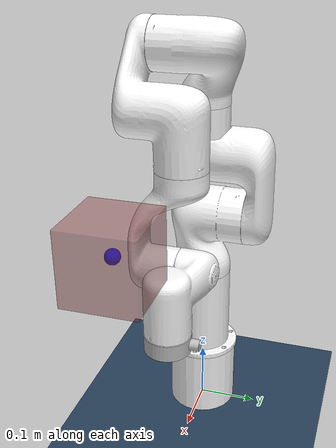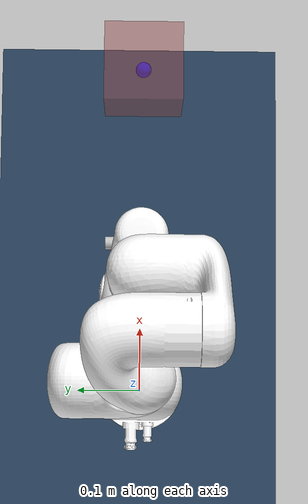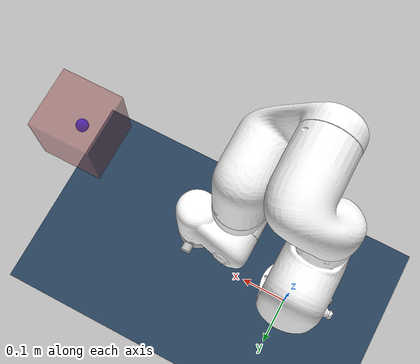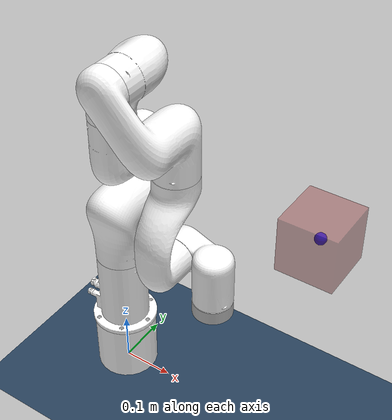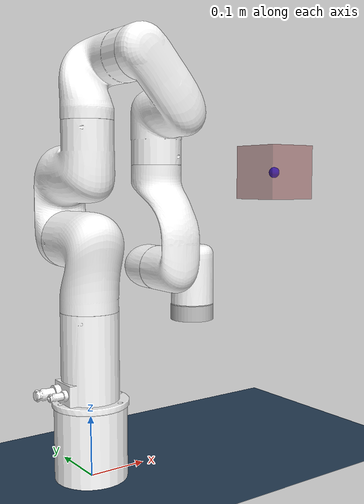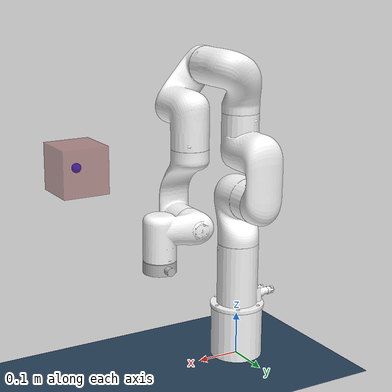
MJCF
<mujoco model="xarm7 scene">
  <include file="xarm7_nohand.xml"/>

  <statistic center="0.2 0 0.4" extent=".65"/>

  <visual>
    <headlight diffuse="0.6 0.6 0.6" ambient="0.3 0.3 0.3" specular="0 0 0"/>
    <rgba haze="0.15 0.25 0.35 1"/>
    <global azimuth="150" elevation="-20"/>
  </visual>

  <asset>
    <texture type="skybox" builtin="gradient" rgb1="0.3 0.5 0.7" rgb2="0 0 0" width="512" height="3072"/>
    <texture type="2d" name="groundplane" builtin="checker" mark="edge" rgb1="0.2 0.3 0.4" rgb2="0.1 0.2 0.3"
      markrgb="0.8 0.8 0.8" width="300" height="300"/>
    <material name="groundplane" texture="groundplane" texuniform="true" texrepeat="5 5" reflectance="0.2"/>
  </asset>

  <worldbody>
    <light pos="0 0 1.5" dir="0 0 -1" directional="true"/>
    <geom name="floor" size="0 0 0.05" type="plane" material="groundplane"/>
    <geom type="cylinder" size=".06 .06" pos="0 0 .06" rgba="1 1 1 1"/>
    <body name="test_mocap_marker" pos="0.4 0 0.5" quat="0 1 0 0" mocap="true">
      <geom type="box" size=".05 .05 .05" contype="0" conaffinity="0" rgba=".6 .3 .3 .5"/>
      <site type="sphere" size="0.01" rgba="0 0 1 1" group="1"/>
    </body>
  </worldbody>
</mujoco>

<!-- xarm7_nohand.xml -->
<mujoco model="xarm7 nohand">
  <compiler angle="radian" autolimits="true" meshdir="assets"/>

  <option integrator="implicitfast"/>

  <!-- ! moved to main file to satisfy reference mechanics -->

  <asset>
    <material name="white" rgba="1 1 1 1"/>
    <material name="gray" rgba="0.753 0.753 0.753 1"/>

    <mesh file="link_base.stl"/>
    <mesh file="link1.stl"/>
    <mesh file="link2.stl"/>
    <mesh file="link3.stl"/>
    <mesh file="link4.stl"/>
    <mesh file="link5.stl"/>
    <mesh file="link6.stl"/>
    <mesh file="link7.stl"/>
    <mesh file="end_tool.stl"/>
  </asset>

  <!--? =================================================================================LINKS and JOINTS============================================================================== -->

  <!-- ! moved to main file to satisfy reference mechanics -->
  <default>
    <default class="xarm7">
      <geom type="mesh" material="white"/>
      <joint axis="0 0 1" armature="0.1" range="-6.28319 6.28319" frictionloss="1"/>
      <general biastype="affine" ctrlrange="-6.28319 6.28319"/>
      <default class="size1">
        <joint damping="10"/>
        <general gainprm="1500" biasprm="0 -1500 -150" forcerange="-50 50"/>
      </default>
      <default class="size2">
        <joint damping="5"/>
        <general gainprm="1000" biasprm="0 -1000 -100" forcerange="-30 30"/>
      </default>
      <default class="size3">
        <joint damping="2"/>
        <general gainprm="800" biasprm="0 -800 -80" forcerange="-20 20"/>
      </default>
      <site size="0.001" rgba="1 0 0 1" group="4"/>
    </default>
  </default>

  <worldbody>
    <body name="link_base" pos="0 0 .12" childclass="xarm7">
      <inertial pos="-0.021131 -0.0016302 0.056488" quat="0.696843 0.20176 0.10388 0.680376" mass="0.88556"
        diaginertia="0.00382023 0.00335282 0.00167725"/>
      <geom mesh="link_base"/>
      <body name="link1" pos="0 0 0.267">
        <inertial pos="-0.0002 0.02905 -0.01233" quat="0.978953 -0.202769 -0.00441617 -0.0227264" mass="2.382"
          diaginertia="0.00569127 0.00533384 0.00293865"/>
        <joint name="joint1" class="size1"/>
        <geom mesh="link1"/>
        <body name="link2" quat="1 -1 0 0">
          <inertial pos="0.00022 -0.12856 0.01735" quat="0.50198 0.86483 -0.00778841 0.00483285" mass="1.869"
            diaginertia="0.00959898 0.00937717 0.00201315"/>
          <joint name="joint2" range="-2.059 2.0944" class="size1"/>
          <geom mesh="link2"/>
          <body name="link3" pos="0 -0.293 0" quat="1 1 0 0">
            <inertial pos="0.0466 -0.02463 -0.00768" quat="0.913819 0.289775 0.281481 -0.0416455" mass="1.6383"
              diaginertia="0.00351721 0.00294089 0.00195868"/>
            <joint name="joint3" class="size2"/>
            <geom mesh="link3"/>
            <body name="link4" pos="0.0525 0 0" quat="1 1 0 0">
              <inertial pos="0.07047 -0.11575 0.012" quat="0.422108 0.852026 -0.126025 0.282832" mass="1.7269"
                diaginertia="0.00657137 0.00647948 0.00186763"/>
              <joint name="joint4" range="-0.19198 3.927" class="size2"/>
              <geom mesh="link4"/>
              <body name="link5" pos="0.0775 -0.3425 0" quat="1 1 0 0">
                <inertial pos="-0.00032 0.01604 -0.026" quat="0.999311 -0.0304457 0.000577067 0.0212082" mass="1.3203"
                  diaginertia="0.00534729 0.00499076 0.0013489"/>
                <joint name="joint5" class="size2"/>
                <geom mesh="link5"/>
                <body name="link6" quat="1 1 0 0">
                  <inertial pos="0.06469 0.03278 0.02141" quat="-0.217672 0.772419 0.16258 0.574069" mass="1.325"
                    diaginertia="0.00245421 0.00221646 0.00107273"/>
                  <joint name="joint6" range="-1.69297 3.14159" class="size3"/>
                  <geom mesh="link6"/>
                  <body name="link7" pos="0.076 0.097 0" quat="1 -1 0 0">
                    <inertial pos="0 -0.00677 -0.01098" quat="0.487612 0.512088 -0.512088 0.487612" mass="0.17"
                      diaginertia="0.000132176 9.3e-05 5.85236e-05"/>
                    <joint name="joint7" class="size3"/>
                    <geom material="gray" mesh="end_tool"/>
                    <site name="attachment_site"/>
                  </body>
                </body>
              </body>
            </body>
          </body>
        </body>
      </body>
    </body>
  </worldbody>

  <!-- ? =================================================================================ACTUATORS===================================================================================== -->

  <!-- ! moved to main file to satisfy reference mechanics -->
  <actuator>
    <motor name="act1" joint="joint1" ctrlrange = "-50 50" />
    <motor name="act2" joint="joint2" ctrlrange = "-50 50" />
    <motor name="act3" joint="joint3" ctrlrange = "-30 30" />
    <motor name="act4" joint="joint4" ctrlrange = "-30 30" />
    <motor name="act5" joint="joint5" ctrlrange = "-20 20" />
    <motor name="act6" joint="joint6" ctrlrange = "-20 20" />
    <motor name="act7" joint="joint7" ctrlrange = "-20 20" />
  </actuator>

  <!-- ? =================================================================================KEYFRAMES===================================================================================== -->

  <!-- ! moved to world.xml file to satisfy reference mechanics -->
  <keyframe>
    <key name="home" qpos="0 -.247 0 .909 0 1.15644 0" ctrl="0 -.247 0 .909 0 1.15644 0"/>
  </keyframe>
</mujoco>
